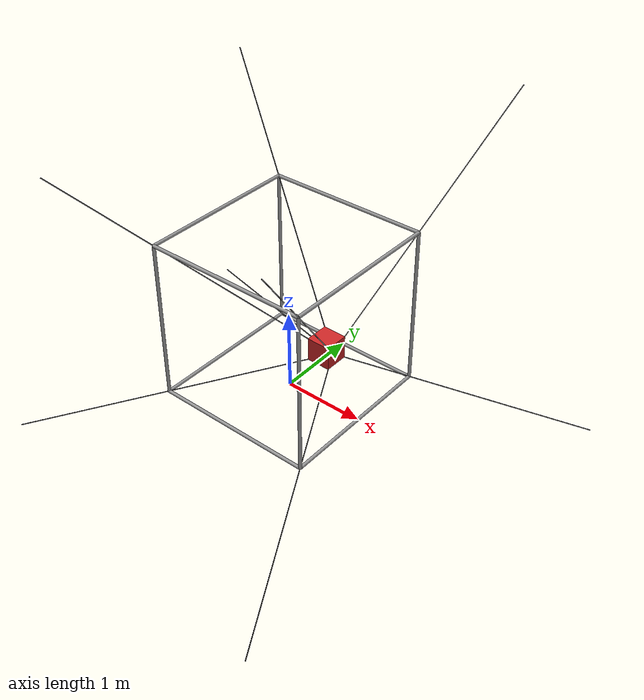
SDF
<?xml version="1.0" ?>
<sdf version="1.4">

	<model name="cube">

		<!--Definition of the robot frame-->

		<link name="frame">

			<pose>0 0 0 0 0 0</pose>

			<inertial>

				<inertia>

					<ixx>100000</ixx>

					<iyy>100000</iyy>

					<izz>100000</izz>

					<ixy>0</ixy>

					<ixz>0</ixz>

					<iyz>0</iyz>

				</inertia>

				<mass>100000</mass>

			</inertial>

			<visual name="visual1">

				<geometry>

					<cylinder>

						<radius>0.02</radius>

						<length>2.0</length>

					</cylinder>

				</geometry>

				<pose>-1.000000 -1.000000 1.000000 0.000000 0.000000 0.000000</pose>

				<material>

					<script>

						<uri>file://media/materials/scripts/kitchen.material</uri>

						<name>Gazebo/Grey</name>

					</script>

				</material>

			</visual>

			<collision name="collision1">

				<geometry>

					<cylinder>

						<radius>0.02</radius>

					</cylinder>

				</geometry>

				<pose>-1.000000 -1.000000 1.000000 0.000000 0.000000 0.000000</pose>

			</collision>

			<visual name="visual2">

				<geometry>

					<cylinder>

						<radius>0.02</radius>

						<length>2.0</length>

					</cylinder>

				</geometry>

				<pose>-1.000000 0.000000 0.000000 1.570796 0.000000 0.000000</pose>

				<material>

					<script>

						<uri>file://media/materials/scripts/kitchen.material</uri>

						<name>Gazebo/Grey</name>

					</script>

				</material>

			</visual>

			<collision name="collision2">

				<geometry>

					<cylinder>

						<radius>0.02</radius>

					</cylinder>

				</geometry>

				<pose>-1.000000 0.000000 0.000000 1.570796 0.000000 0.000000</pose>

			</collision>

			<visual name="visual3">

				<geometry>

					<cylinder>

						<radius>0.02</radius>

						<length>2.0</length>

					</cylinder>

				</geometry>

				<pose>0.000000 -1.000000 0.000000 0.000000 1.570796 0.000000</pose>

				<material>

					<script>

						<uri>file://media/materials/scripts/kitchen.material</uri>

						<name>Gazebo/Grey</name>

					</script>

				</material>

			</visual>

			<collision name="collision3">

				<geometry>

					<cylinder>

						<radius>0.02</radius>

					</cylinder>

				</geometry>

				<pose>0.000000 -1.000000 0.000000 0.000000 1.570796 0.000000</pose>

			</collision>

			<visual name="visual4">

				<geometry>

					<cylinder>

						<radius>0.02</radius>

						<length>2.0</length>

					</cylinder>

				</geometry>

				<pose>-1.000000 0.000000 2.000000 1.570796 0.000000 0.000000</pose>

				<material>

					<script>

						<uri>file://media/materials/scripts/kitchen.material</uri>

						<name>Gazebo/Grey</name>

					</script>

				</material>

			</visual>

			<collision name="collision4">

				<geometry>

					<cylinder>

						<radius>0.02</radius>

					</cylinder>

				</geometry>

				<pose>-1.000000 0.000000 2.000000 1.570796 0.000000 0.000000</pose>

			</collision>

			<visual name="visual5">

				<geometry>

					<cylinder>

						<radius>0.02</radius>

						<length>2.0</length>

					</cylinder>

				</geometry>

				<pose>0.000000 -1.000000 2.000000 0.000000 1.570796 0.000000</pose>

				<material>

					<script>

						<uri>file://media/materials/scripts/kitchen.material</uri>

						<name>Gazebo/Grey</name>

					</script>

				</material>

			</visual>

			<collision name="collision5">

				<geometry>

					<cylinder>

						<radius>0.02</radius>

					</cylinder>

				</geometry>

				<pose>0.000000 -1.000000 2.000000 0.000000 1.570796 0.000000</pose>

			</collision>

			<visual name="visual6">

				<geometry>

					<cylinder>

						<radius>0.02</radius>

						<length>2.0</length>

					</cylinder>

				</geometry>

				<pose>-1.000000 1.000000 1.000000 0.000000 0.000000 0.000000</pose>

				<material>

					<script>

						<uri>file://media/materials/scripts/kitchen.material</uri>

						<name>Gazebo/Grey</name>

					</script>

				</material>

			</visual>

			<collision name="collision6">

				<geometry>

					<cylinder>

						<radius>0.02</radius>

					</cylinder>

				</geometry>

				<pose>-1.000000 1.000000 1.000000 0.000000 0.000000 0.000000</pose>

			</collision>

			<visual name="visual7">

				<geometry>

					<cylinder>

						<radius>0.02</radius>

						<length>2.0</length>

					</cylinder>

				</geometry>

				<pose>0.000000 1.000000 0.000000 0.000000 1.570796 0.000000</pose>

				<material>

					<script>

						<uri>file://media/materials/scripts/kitchen.material</uri>

						<name>Gazebo/Grey</name>

					</script>

				</material>

			</visual>

			<collision name="collision7">

				<geometry>

					<cylinder>

						<radius>0.02</radius>

					</cylinder>

				</geometry>

				<pose>0.000000 1.000000 0.000000 0.000000 1.570796 0.000000</pose>

			</collision>

			<visual name="visual8">

				<geometry>

					<cylinder>

						<radius>0.02</radius>

						<length>2.0</length>

					</cylinder>

				</geometry>

				<pose>0.000000 1.000000 2.000000 0.000000 1.570796 0.000000</pose>

				<material>

					<script>

						<uri>file://media/materials/scripts/kitchen.material</uri>

						<name>Gazebo/Grey</name>

					</script>

				</material>

			</visual>

			<collision name="collision8">

				<geometry>

					<cylinder>

						<radius>0.02</radius>

					</cylinder>

				</geometry>

				<pose>0.000000 1.000000 2.000000 0.000000 1.570796 0.000000</pose>

			</collision>

			<visual name="visual9">

				<geometry>

					<cylinder>

						<radius>0.02</radius>

						<length>2.0</length>

					</cylinder>

				</geometry>

				<pose>1.000000 -1.000000 1.000000 0.000000 0.000000 0.000000</pose>

				<material>

					<script>

						<uri>file://media/materials/scripts/kitchen.material</uri>

						<name>Gazebo/Grey</name>

					</script>

				</material>

			</visual>

			<collision name="collision9">

				<geometry>

					<cylinder>

						<radius>0.02</radius>

					</cylinder>

				</geometry>

				<pose>1.000000 -1.000000 1.000000 0.000000 0.000000 0.000000</pose>

			</collision>

			<visual name="visual10">

				<geometry>

					<cylinder>

						<radius>0.02</radius>

						<length>2.0</length>

					</cylinder>

				</geometry>

				<pose>1.000000 0.000000 0.000000 1.570796 0.000000 0.000000</pose>

				<material>

					<script>

						<uri>file://media/materials/scripts/kitchen.material</uri>

						<name>Gazebo/Grey</name>

					</script>

				</material>

			</visual>

			<collision name="collision10">

				<geometry>

					<cylinder>

						<radius>0.02</radius>

					</cylinder>

				</geometry>

				<pose>1.000000 0.000000 0.000000 1.570796 0.000000 0.000000</pose>

			</collision>

			<visual name="visual11">

				<geometry>

					<cylinder>

						<radius>0.02</radius>

						<length>2.0</length>

					</cylinder>

				</geometry>

				<pose>1.000000 0.000000 2.000000 1.570796 0.000000 0.000000</pose>

				<material>

					<script>

						<uri>file://media/materials/scripts/kitchen.material</uri>

						<name>Gazebo/Grey</name>

					</script>

				</material>

			</visual>

			<collision name="collision11">

				<geometry>

					<cylinder>

						<radius>0.02</radius>

					</cylinder>

				</geometry>

				<pose>1.000000 0.000000 2.000000 1.570796 0.000000 0.000000</pose>

			</collision>

			<visual name="visual12">

				<geometry>

					<cylinder>

						<radius>0.02</radius>

						<length>2.0</length>

					</cylinder>

				</geometry>

				<pose>1.000000 1.000000 1.000000 0.000000 0.000000 0.000000</pose>

				<material>

					<script>

						<uri>file://media/materials/scripts/kitchen.material</uri>

						<name>Gazebo/Grey</name>

					</script>

				</material>

			</visual>

			<collision name="collision12">

				<geometry>

					<cylinder>

						<radius>0.02</radius>

					</cylinder>

				</geometry>

				<pose>1.000000 1.000000 1.000000 0.000000 0.000000 0.000000</pose>

			</collision>

		</link>

		<!--Definition of the robot cables-->

		<!--Definition of the robot platform-->

		<link name="platform">

			<pose>0.300000 0.300000 0.500000 0.000000 0.000000 0.000000</pose>

			<visual name="visualpf">

				<geometry>

					<box>

						<size>0.300000 0.300000 0.300000</size>

					</box>

				</geometry>

				<material>

					<script>

						<uri>file://media/materials/scripts/kitchen.material</uri>

						<name>Gazebo/Red</name>

					</script>

				</material>

			</visual>

			<collision name="collisionpf">

				<geometry>

					<box>

						<size>0.300000 0.300000 0.300000</size>

					</box>

				</geometry>

			</collision>

			<inertial>

				<inertia>

					<ixx>0.33</ixx>

					<iyy>0.33</iyy>

					<izz>0.33</izz>

					<ixy>0.0</ixy>

					<ixz>0.0</ixz>

					<iyz>0.0</iyz>

				</inertia>

				<mass>5</mass>

			</inertial>

		</link>

		<link name="cable0">

			<pose>-0.792380 -0.792380 1.756272 -2.436024 0.575296 -1.353793</pose>

			<visual name="visual">

				<geometry>

					<cylinder>

						<radius>0.005</radius>

						<length>3.4641016151377544</length>

					</cylinder>

				</geometry>

				<material>

					<script>

						<uri>file://media/materials/scripts/kitchen.material</uri>

						<name>Gazebo/Black</name>

					</script>

				</material>

			</visual>

			<inertial>

				<inertia>

					<ixx>0.001</ixx>

					<iyy>0.001</iyy>

					<izz>0.001</izz>

					<ixy>0</ixy>

					<ixz>0</ixz>

					<iyz>0</iyz>

				</inertia>

				<mass>0.001</mass>

			</inertial>

		</link>

		<link name="virt_X0">

			<inertial>

				<inertia>

					<ixx>0.001</ixx>

					<iyy>0.001</iyy>

					<izz>0.001</izz>

					<ixy>0</ixy>

					<ixz>0</ixz>

					<iyz>0</iyz>

				</inertia>

				<mass>0.001</mass>

			</inertial>

			<pose>-1.000000 -1.000000 2.000000 -2.436024 0.575296 -1.353793</pose>

		</link>

		<joint name="rev_X0" type="revolute">

			<pose>0 0 0 -2.436024 0.575296 -1.353793</pose>

			<parent>frame</parent>

			<child>virt_X0</child>

			<axis>

				<xyz>0.180647 -0.819353 -0.544084</xyz>

				<limit>

					<effort>10000</effort>

					<velocity>10</velocity>

				</limit>

				<dynamics>

					<damping>0.1</damping>

				</dynamics>

			</axis>

		</joint>

		<link name="virt_Y0">

			<inertial>

				<inertia>

					<ixx>0.001</ixx>

					<iyy>0.001</iyy>

					<izz>0.001</izz>

					<ixy>0</ixy>

					<ixz>0</ixz>

					<iyz>0</iyz>

				</inertia>

				<mass>0.001</mass>

			</inertial>

			<pose>-1.000000 -1.000000 2.000000 -2.436024 0.575296 -1.353793</pose>

		</link>

		<joint name="rev_Y0" type="revolute">

			<pose>0 0 0 -2.436024 0.575296 -1.353793</pose>

			<parent>virt_X0</parent>

			<child>virt_Y0</child>

			<axis>

				<xyz>-0.819353 0.180647 -0.544084</xyz>

				<limit>

					<effort>10000</effort>

					<velocity>10</velocity>

				</limit>

				<dynamics>

					<damping>0.1</damping>

				</dynamics>

			</axis>

		</joint>

		<joint name="cable0" type="prismatic">
			<pose>0 0 -0.312703 -2.436024 0.575296 -1.353793</pose>
			<parent>virt_Y0</parent>
			<child>cable0</child>
			<axis>
				<xyz>-0.544084 -0.544084 0.638707</xyz>
				<limit>
					<lower>-1.7320508075688772</lower>
					<upper>1.7320508075688772</upper>
					<effort>10000</effort>
					<velocity>10</velocity>
				</limit>
				<dynamics>
					<damping>10</damping>
				</dynamics>
			</axis>
		</joint>
		<transmission name="lift_transmission">
    		<type>transmission_interface/SimpleTransmission</type>
    		<joint name="cable0">
      			<hardwareInterface>PositionJointInterface</hardwareInterface>
    		</joint>
    		<actuator name="lift_motor_0">
      			<hardwareInterface>PositionJointInterface</hardwareInterface>
      			<mechanicalReduction>1</mechanicalReduction>
    		</actuator>
  		</transmission>
		<link name="virt_Xpf0">

			<inertial>

				<inertia>

					<ixx>0.001</ixx>

					<iyy>0.001</iyy>

					<izz>0.001</izz>

					<ixy>0</ixy>

					<ixz>0</ixz>

					<iyz>0</iyz>

				</inertia>

				<mass>0.001</mass>

			</inertial>

			<pose>0.150000 0.150000 0.650000 -2.436024 0.575296 -1.353793</pose>

		</link>

		<joint name="rev_Xpf0" type="revolute">

			<pose>0 0 0 -2.436024 0.575296 -1.353793</pose>

			<parent>platform</parent>

			<child>virt_Xpf0</child>

			<axis>

				<xyz>1 0 0</xyz>

				<limit>

					<effort>10000</effort>

					<velocity>10</velocity>

				</limit>

				<dynamics>

					<damping>0.1</damping>

				</dynamics>

			</axis>

		</joint>

		<link name="virt_Ypf0">

			<inertial>

				<inertia>

					<ixx>0.001</ixx>

					<iyy>0.001</iyy>

					<izz>0.001</izz>

					<ixy>0</ixy>

					<ixz>0</ixz>

					<iyz>0</iyz>

				</inertia>

				<mass>0.001</mass>

			</inertial>

			<pose>0.150000 0.150000 0.650000 -2.436024 0.575296 -1.353793</pose>

		</link>

		<joint name="rev_Ypf0" type="revolute">

			<pose>0 0 0 -2.436024 0.575296 -1.353793</pose>

			<parent>virt_Xpf0</parent>

			<child>virt_Ypf0</child>

			<axis>

				<xyz>0 1 0</xyz>

				<limit>

					<effort>10000</effort>

					<velocity>10</velocity>

				</limit>

				<dynamics>

					<damping>0.1</damping>

				</dynamics>

			</axis>

		</joint>

		<joint name="rev_Zpf0" type="revolute">

			<pose>0 0 0 -2.436024 0.575296 -1.353793</pose>

			<child>virt_Ypf0</child>

			<parent>cable0</parent>

			<axis>

				<xyz>0 0 1</xyz>

				<limit>

					<effort>10000</effort>

					<velocity>10</velocity>

				</limit>

				<dynamics>

					<damping>0.1</damping>

				</dynamics>

			</axis>

		</joint>

		<link name="cable1">
			<pose>-0.922769 0.963064 1.909338 2.754717 0.667932 2.113659</pose>
			<visual name="visual">
				<geometry>
					<cylinder>
						<radius>0.005</radius>
						<length>3.4641016151377544</length>
					</cylinder>
				</geometry>
				<material>
					<script>
						<uri>file://media/materials/scripts/kitchen.material</uri>
						<name>Gazebo/Black</name>

					</script>

				</material>

			</visual>

			<inertial>

				<inertia>

					<ixx>0.001</ixx>

					<iyy>0.001</iyy>

					<izz>0.001</izz>

					<ixy>0</ixy>

					<ixz>0</ixz>

					<iyz>0</iyz>

				</inertia>

				<mass>0.001</mass>

			</inertial>

		</link>

		<link name="virt_X1">

			<inertial>

				<inertia>

					<ixx>0.001</ixx>

					<iyy>0.001</iyy>

					<izz>0.001</izz>

					<ixy>0</ixy>

					<ixz>0</ixz>

					<iyz>0</iyz>

				</inertia>

				<mass>0.001</mass>

			</inertial>

			<pose>-1.000000 1.000000 2.000000 2.754717 0.667932 2.113659</pose>

		</link>

		<joint name="rev_X1" type="revolute">

			<pose>0 0 0 2.754717 0.667932 2.113659</pose>

			<parent>frame</parent>

			<child>virt_X1</child>

			<axis>

				<xyz>-0.405577 0.672232 -0.619364</xyz>

				<limit>

					<effort>10000</effort>

					<velocity>10</velocity>

				</limit>

				<dynamics>

					<damping>0.1</damping>

				</dynamics>

			</axis>

		</joint>

		<link name="virt_Y1">

			<inertial>

				<inertia>

					<ixx>0.001</ixx>

					<iyy>0.001</iyy>

					<izz>0.001</izz>

					<ixy>0</ixy>

					<ixz>0</ixz>

					<iyz>0</iyz>

				</inertia>

				<mass>0.001</mass>

			</inertial>

			<pose>-1.000000 1.000000 2.000000 2.754717 0.667932 2.113659</pose>

		</link>

		<joint name="rev_Y1" type="revolute">

			<pose>0 0 0 2.754717 0.667932 2.113659</pose>

			<parent>virt_X1</parent>

			<child>virt_Y1</child>

			<axis>

				<xyz>0.672232 0.678498 0.296217</xyz>

				<limit>

					<effort>10000</effort>

					<velocity>10</velocity>

				</limit>

				<dynamics>

					<damping>0.1</damping>

				</dynamics>

			</axis>

		</joint>

		<joint name="cable1" type="prismatic">
			<pose>0 0 -0.116320 2.754717 0.667932 2.113659</pose>
			<parent>virt_Y1</parent>
			<child>cable1</child>
			<axis>
				<xyz>-0.619364 0.296217 0.727079</xyz>
				<limit>
					<lower>-1.7320508075688772</lower>
					<upper>1.7320508075688772</upper>
					<effort>10000</effort>
					<velocity>10</velocity>
				</limit>
				<dynamics>
					<damping>10</damping>
				</dynamics>
			</axis>
		</joint>
		<transmission name="lift_transmission_1">
    		<type>transmission_interface/SimpleTransmission</type>
    		<joint name="cable1">
      			<hardwareInterface>PositionJointInterface</hardwareInterface>
    		</joint>
    		<actuator name="lift_motor_1">
      			<hardwareInterface>PositionJointInterface</hardwareInterface>
      			<mechanicalReduction>1</mechanicalReduction>
    		</actuator>
  		</transmission>

		<link name="virt_Xpf1">

			<inertial>

				<inertia>

					<ixx>0.001</ixx>

					<iyy>0.001</iyy>

					<izz>0.001</izz>

					<ixy>0</ixy>

					<ixz>0</ixz>

					<iyz>0</iyz>

				</inertia>

				<mass>0.001</mass>

			</inertial>

			<pose>0.150000 0.450000 0.650000 2.754717 0.667932 2.113659</pose>

		</link>

		<joint name="rev_Xpf1" type="revolute">

			<pose>0 0 0 2.754717 0.667932 2.113659</pose>

			<parent>platform</parent>

			<child>virt_Xpf1</child>

			<axis>

				<xyz>1 0 0</xyz>

				<limit>

					<effort>10000</effort>

					<velocity>10</velocity>

				</limit>

				<dynamics>

					<damping>0.1</damping>

				</dynamics>

			</axis>

		</joint>

		<link name="virt_Ypf1">

			<inertial>

				<inertia>

					<ixx>0.001</ixx>

					<iyy>0.001</iyy>

					<izz>0.001</izz>

					<ixy>0</ixy>

					<ixz>0</ixz>

					<iyz>0</iyz>

				</inertia>

				<mass>0.001</mass>

			</inertial>

			<pose>0.150000 0.450000 0.650000 2.754717 0.667932 2.113659</pose>

		</link>

		<joint name="rev_Ypf1" type="revolute">

			<pose>0 0 0 2.754717 0.667932 2.113659</pose>

			<parent>virt_Xpf1</parent>

			<child>virt_Ypf1</child>

			<axis>

				<xyz>0 1 0</xyz>

				<limit>

					<effort>10000</effort>

					<velocity>10</velocity>

				</limit>

				<dynamics>

					<damping>0.1</damping>

				</dynamics>

			</axis>

		</joint>

		<joint name="rev_Zpf1" type="revolute">

			<pose>0 0 0 2.754717 0.667932 2.113659</pose>

			<child>virt_Ypf1</child>

			<parent>cable1</parent>

			<axis>

				<xyz>0 0 1</xyz>

				<limit>

					<effort>10000</effort>

					<velocity>10</velocity>

				</limit>

				<dynamics>

					<damping>0.1</damping>

				</dynamics>

			</axis>

		</joint>

		<link name="cable2">

			<pose>1.061426 1.061426 2.150772 2.754717 -0.360783 -1.499377</pose>

			<visual name="visual">

				<geometry>

					<cylinder>

						<radius>0.005</radius>

						<length>3.4641016151377544</length>

					</cylinder>

				</geometry>

				<material>

					<script>

						<uri>file://media/materials/scripts/kitchen.material</uri>

						<name>Gazebo/Black</name>

					</script>

				</material>

			</visual>

			<inertial>

				<inertia>

					<ixx>0.001</ixx>

					<iyy>0.001</iyy>

					<izz>0.001</izz>

					<ixy>0</ixy>

					<ixz>0</ixz>

					<iyz>0</iyz>

				</inertia>

				<mass>0.001</mass>

			</inertial>

		</link>

		<link name="virt_X2">

			<inertial>

				<inertia>

					<ixx>0.001</ixx>

					<iyy>0.001</iyy>

					<izz>0.001</izz>

					<ixy>0</ixy>

					<ixz>0</ixz>

					<iyz>0</iyz>

				</inertia>

				<mass>0.001</mass>

			</inertial>

			<pose>1.000000 1.000000 2.000000 2.754717 -0.360783 -1.499377</pose>

		</link>

		<joint name="rev_X2" type="revolute">

			<pose>0 0 0 2.754717 -0.360783 -1.499377</pose>

			<parent>frame</parent>

			<child>virt_X2</child>

			<axis>

				<xyz>0.066764 -0.933236 0.353007</xyz>

				<limit>

					<effort>10000</effort>

					<velocity>10</velocity>

				</limit>

				<dynamics>

					<damping>0.1</damping>

				</dynamics>

			</axis>

		</joint>

		<link name="virt_Y2">

			<inertial>

				<inertia>

					<ixx>0.001</ixx>

					<iyy>0.001</iyy>

					<izz>0.001</izz>

					<ixy>0</ixy>

					<ixz>0</ixz>

					<iyz>0</iyz>

				</inertia>

				<mass>0.001</mass>

			</inertial>

			<pose>1.000000 1.000000 2.000000 2.754717 -0.360783 -1.499377</pose>

		</link>

		<joint name="rev_Y2" type="revolute">

			<pose>0 0 0 2.754717 -0.360783 -1.499377</pose>

			<parent>virt_X2</parent>

			<child>virt_Y2</child>

			<axis>

				<xyz>-0.933236 0.066764 0.353007</xyz>

				<limit>

					<effort>10000</effort>

					<velocity>10</velocity>

				</limit>

				<dynamics>

					<damping>0.1</damping>

				</dynamics>

			</axis>

		</joint>

		<joint name="cable2" type="prismatic">

			<pose>0 0 0.193441 2.754717 -0.360783 -1.499377</pose>

			<parent>virt_Y2</parent>

			<child>cable2</child>

			<axis>

				<xyz>0.353007 0.353007 0.866471</xyz>

				<limit>

					<lower>-1.7320508075688772</lower>

					<upper>1.7320508075688772</upper>

					<effort>10000</effort>

					<velocity>10</velocity>

				</limit>

				<dynamics>
					<damping>10</damping>
				</dynamics>
			</axis>
		</joint>
		<transmission name="lift_transmission_2">
    		<type>transmission_interface/SimpleTransmission</type>
    		<joint name="cable2">
      			<hardwareInterface>PositionJointInterface</hardwareInterface>
    		</joint>
    		<actuator name="lift_motor_2">
      			<hardwareInterface>PositionJointInterface</hardwareInterface>
      			<mechanicalReduction>1</mechanicalReduction>
    		</actuator>
  		</transmission>
		<link name="virt_Xpf2">

			<inertial>

				<inertia>

					<ixx>0.001</ixx>

					<iyy>0.001</iyy>

					<izz>0.001</izz>

					<ixy>0</ixy>

					<ixz>0</ixz>

					<iyz>0</iyz>

				</inertia>

				<mass>0.001</mass>

			</inertial>

			<pose>0.450000 0.450000 0.650000 2.754717 -0.360783 -1.499377</pose>

		</link>

		<joint name="rev_Xpf2" type="revolute">

			<pose>0 0 0 2.754717 -0.360783 -1.499377</pose>

			<parent>platform</parent>

			<child>virt_Xpf2</child>

			<axis>

				<xyz>1 0 0</xyz>

				<limit>

					<effort>10000</effort>

					<velocity>10</velocity>

				</limit>

				<dynamics>

					<damping>0.1</damping>

				</dynamics>

			</axis>

		</joint>

		<link name="virt_Ypf2">

			<inertial>

				<inertia>

					<ixx>0.001</ixx>

					<iyy>0.001</iyy>

					<izz>0.001</izz>

					<ixy>0</ixy>

					<ixz>0</ixz>

					<iyz>0</iyz>

				</inertia>

				<mass>0.001</mass>

			</inertial>

			<pose>0.450000 0.450000 0.650000 2.754717 -0.360783 -1.499377</pose>

		</link>

		<joint name="rev_Ypf2" type="revolute">

			<pose>0 0 0 2.754717 -0.360783 -1.499377</pose>

			<parent>virt_Xpf2</parent>

			<child>virt_Ypf2</child>

			<axis>

				<xyz>0 1 0</xyz>

				<limit>

					<effort>10000</effort>

					<velocity>10</velocity>

				</limit>

				<dynamics>

					<damping>0.1</damping>

				</dynamics>

			</axis>

		</joint>

		<joint name="rev_Zpf2" type="revolute">

			<pose>0 0 0 2.754717 -0.360783 -1.499377</pose>

			<child>virt_Ypf2</child>

			<parent>cable2</parent>

			<axis>

				<xyz>0 0 1</xyz>

				<limit>

					<effort>10000</effort>

					<velocity>10</velocity>

				</limit>

				<dynamics>

					<damping>0.1</damping>

				</dynamics>

			</axis>

		</joint>

		<link name="cable3">

			<pose>0.963064 -0.922769 1.909338 -2.436024 -0.300730 0.780760</pose>

			<visual name="visual">

				<geometry>

					<cylinder>

						<radius>0.005</radius>

						<length>3.4641016151377544</length>

					</cylinder>

				</geometry>

				<material>

					<script>

						<uri>file://media/materials/scripts/kitchen.material</uri>

						<name>Gazebo/Black</name>

					</script>

				</material>

			</visual>

			<inertial>

				<inertia>

					<ixx>0.001</ixx>

					<iyy>0.001</iyy>

					<izz>0.001</izz>

					<ixy>0</ixy>

					<ixz>0</ixz>

					<iyz>0</iyz>

				</inertia>

				<mass>0.001</mass>

			</inertial>

		</link>

		<link name="virt_X3">

			<inertial>

				<inertia>

					<ixx>0.001</ixx>

					<iyy>0.001</iyy>

					<izz>0.001</izz>

					<ixy>0</ixy>

					<ixz>0</ixz>

					<iyz>0</iyz>

				</inertia>

				<mass>0.001</mass>

			</inertial>

			<pose>1.000000 -1.000000 2.000000 -2.436024 -0.300730 0.780760</pose>

		</link>

		<joint name="rev_X3" type="revolute">

			<pose>0 0 0 -2.436024 -0.300730 0.780760</pose>

			<parent>frame</parent>

			<child>virt_X3</child>

			<axis>

				<xyz>0.678498 0.672232 0.296217</xyz>

				<limit>

					<effort>10000</effort>

					<velocity>10</velocity>

				</limit>

				<dynamics>

					<damping>0.1</damping>

				</dynamics>

			</axis>

		</joint>

		<link name="virt_Y3">

			<inertial>

				<inertia>

					<ixx>0.001</ixx>

					<iyy>0.001</iyy>

					<izz>0.001</izz>

					<ixy>0</ixy>

					<ixz>0</ixz>

					<iyz>0</iyz>

				</inertia>

				<mass>0.001</mass>

			</inertial>

			<pose>1.000000 -1.000000 2.000000 -2.436024 -0.300730 0.780760</pose>

		</link>

		<joint name="rev_Y3" type="revolute">

			<pose>0 0 0 -2.436024 -0.300730 0.780760</pose>

			<parent>virt_X3</parent>

			<child>virt_Y3</child>

			<axis>

				<xyz>0.672232 -0.405577 -0.619364</xyz>

				<limit>

					<effort>10000</effort>

					<velocity>10</velocity>

				</limit>

				<dynamics>

					<damping>0.1</damping>

				</dynamics>

			</axis>

		</joint>

		<joint name="cable3" type="prismatic">

			<pose>0 0 -0.116320 -2.436024 -0.300730 0.780760</pose>

			<parent>virt_Y3</parent>

			<child>cable3</child>

			<axis>

				<xyz>0.296217 -0.619364 0.727079</xyz>

				<limit>

					<lower>-1.7320508075688772</lower>

					<upper>1.7320508075688772</upper>

					<effort>10000</effort>

					<velocity>10</velocity>

				</limit>

				<dynamics>

					<damping>10</damping>

				</dynamics>

			</axis>

		</joint>
		<transmission name="lift_transmission_3">
    		<type>transmission_interface/SimpleTransmission</type>
    		<joint name="cable3">
      			<hardwareInterface>PositionJointInterface</hardwareInterface>
    		</joint>
    		<actuator name="lift_motor_3">
      			<hardwareInterface>PositionJointInterface</hardwareInterface>
      			<mechanicalReduction>1</mechanicalReduction>
    		</actuator>
  		</transmission>

		<link name="virt_Xpf3">

			<inertial>

				<inertia>

					<ixx>0.001</ixx>

					<iyy>0.001</iyy>

					<izz>0.001</izz>

					<ixy>0</ixy>

					<ixz>0</ixz>

					<iyz>0</iyz>

				</inertia>

				<mass>0.001</mass>

			</inertial>

			<pose>0.450000 0.150000 0.650000 -2.436024 -0.300730 0.780760</pose>

		</link>

		<joint name="rev_Xpf3" type="revolute">

			<pose>0 0 0 -2.436024 -0.300730 0.780760</pose>

			<parent>platform</parent>

			<child>virt_Xpf3</child>

			<axis>

				<xyz>1 0 0</xyz>

				<limit>

					<effort>10000</effort>

					<velocity>10</velocity>

				</limit>

				<dynamics>

					<damping>0.1</damping>

				</dynamics>

			</axis>

		</joint>

		<link name="virt_Ypf3">

			<inertial>

				<inertia>

					<ixx>0.001</ixx>

					<iyy>0.001</iyy>

					<izz>0.001</izz>

					<ixy>0</ixy>

					<ixz>0</ixz>

					<iyz>0</iyz>

				</inertia>

				<mass>0.001</mass>

			</inertial>

			<pose>0.450000 0.150000 0.650000 -2.436024 -0.300730 0.780760</pose>

		</link>

		<joint name="rev_Ypf3" type="revolute">

			<pose>0 0 0 -2.436024 -0.300730 0.780760</pose>

			<parent>virt_Xpf3</parent>

			<child>virt_Ypf3</child>

			<axis>

				<xyz>0 1 0</xyz>

				<limit>

					<effort>10000</effort>

					<velocity>10</velocity>

				</limit>

				<dynamics>

					<damping>0.1</damping>

				</dynamics>

			</axis>

		</joint>

		<joint name="rev_Zpf3" type="revolute">

			<pose>0 0 0 -2.436024 -0.300730 0.780760</pose>

			<child>virt_Ypf3</child>

			<parent>cable3</parent>

			<axis>

				<xyz>0 0 1</xyz>

				<limit>

					<effort>10000</effort>

					<velocity>10</velocity>

				</limit>

				<dynamics>

					<damping>0.1</damping>

				</dynamics>

			</axis>

		</joint>

		<link name="cable4">

			<pose>-1.047332 -1.047332 -0.014405 -1.275355 0.763259 -0.578033</pose>

			<visual name="visual">

				<geometry>

					<cylinder>

						<radius>0.005</radius>

						<length>3.4641016151377544</length>

					</cylinder>

				</geometry>

				<material>

					<script>

						<uri>file://media/materials/scripts/kitchen.material</uri>

						<name>Gazebo/Black</name>

					</script>

				</material>

			</visual>

			<inertial>

				<inertia>

					<ixx>0.001</ixx>

					<iyy>0.001</iyy>

					<izz>0.001</izz>

					<ixy>0</ixy>

					<ixz>0</ixz>

					<iyz>0</iyz>

				</inertia>

				<mass>0.001</mass>

			</inertial>

		</link>

		<link name="virt_X4">

			<inertial>

				<inertia>

					<ixx>0.001</ixx>

					<iyy>0.001</iyy>

					<izz>0.001</izz>

					<ixy>0</ixy>

					<ixz>0</ixz>

					<iyz>0</iyz>

				</inertia>

				<mass>0.001</mass>

			</inertial>

			<pose>-1.000000 -1.000000 0.000000 -1.275355 0.763259 -0.578033</pose>

		</link>

		<joint name="rev_X4" type="revolute">

			<pose>0 0 0 -1.275355 0.763259 -0.578033</pose>

			<parent>frame</parent>

			<child>virt_X4</child>

			<axis>

				<xyz>0.605195 -0.394805 -0.691280</xyz>

				<limit>

					<effort>10000</effort>

					<velocity>10</velocity>

				</limit>

				<dynamics>

					<damping>0.1</damping>

				</dynamics>

			</axis>

		</joint>

		<link name="virt_Y4">

			<inertial>

				<inertia>

					<ixx>0.001</ixx>

					<iyy>0.001</iyy>

					<izz>0.001</izz>

					<ixy>0</ixy>

					<ixz>0</ixz>

					<iyz>0</iyz>

				</inertia>

				<mass>0.001</mass>

			</inertial>

			<pose>-1.000000 -1.000000 0.000000 -1.275355 0.763259 -0.578033</pose>

		</link>

		<joint name="rev_Y4" type="revolute">

			<pose>0 0 0 -1.275355 0.763259 -0.578033</pose>

			<parent>virt_X4</parent>

			<child>virt_Y4</child>

			<axis>

				<xyz>-0.394805 0.605195 -0.691280</xyz>

				<limit>

					<effort>10000</effort>

					<velocity>10</velocity>

				</limit>

				<dynamics>

					<damping>0.1</damping>

				</dynamics>

			</axis>

		</joint>

		<joint name="cable4" type="prismatic">

			<pose>0 0 0.071288 -1.275355 0.763259 -0.578033</pose>

			<parent>virt_Y4</parent>

			<child>cable4</child>

			<axis>

				<xyz>-0.691280 -0.691280 -0.210390</xyz>

				<limit>

					<lower>-1.7320508075688772</lower>

					<upper>1.7320508075688772</upper>

					<effort>10000</effort>

					<velocity>10</velocity>

				</limit>

				<dynamics>

					<damping>10</damping>

				</dynamics>

			</axis>

		</joint>
		<transmission name="lift_transmission_4">
    		<type>transmission_interface/SimpleTransmission</type>
    		<joint name="cable4">
      			<hardwareInterface>PositionJointInterface</hardwareInterface>
    		</joint>
    		<actuator name="lift_motor_4">
      			<hardwareInterface>PositionJointInterface</hardwareInterface>
      			<mechanicalReduction>1</mechanicalReduction>
    		</actuator>
  		</transmission>

		<link name="virt_Xpf4">

			<inertial>

				<inertia>

					<ixx>0.001</ixx>

					<iyy>0.001</iyy>

					<izz>0.001</izz>

					<ixy>0</ixy>

					<ixz>0</ixz>

					<iyz>0</iyz>

				</inertia>

				<mass>0.001</mass>

			</inertial>

			<pose>0.150000 0.150000 0.350000 -1.275355 0.763259 -0.578033</pose>

		</link>

		<joint name="rev_Xpf4" type="revolute">

			<pose>0 0 0 -1.275355 0.763259 -0.578033</pose>

			<parent>platform</parent>

			<child>virt_Xpf4</child>

			<axis>

				<xyz>1 0 0</xyz>

				<limit>

					<effort>10000</effort>

					<velocity>10</velocity>

				</limit>

				<dynamics>

					<damping>0.1</damping>

				</dynamics>

			</axis>

		</joint>

		<link name="virt_Ypf4">

			<inertial>

				<inertia>

					<ixx>0.001</ixx>

					<iyy>0.001</iyy>

					<izz>0.001</izz>

					<ixy>0</ixy>

					<ixz>0</ixz>

					<iyz>0</iyz>

				</inertia>

				<mass>0.001</mass>

			</inertial>

			<pose>0.150000 0.150000 0.350000 -1.275355 0.763259 -0.578033</pose>

		</link>

		<joint name="rev_Ypf4" type="revolute">

			<pose>0 0 0 -1.275355 0.763259 -0.578033</pose>

			<parent>virt_Xpf4</parent>

			<child>virt_Ypf4</child>

			<axis>

				<xyz>0 1 0</xyz>

				<limit>

					<effort>10000</effort>

					<velocity>10</velocity>

				</limit>

				<dynamics>

					<damping>0.1</damping>

				</dynamics>

			</axis>

		</joint>

		<joint name="rev_Zpf4" type="revolute">

			<pose>0 0 0 -1.275355 0.763259 -0.578033</pose>

			<child>virt_Ypf4</child>

			<parent>cable4</parent>

			<axis>

				<xyz>0 0 1</xyz>

				<limit>

					<effort>10000</effort>

					<velocity>10</velocity>

				</limit>

				<dynamics>

					<damping>0.1</damping>

				</dynamics>

			</axis>

		</joint>

		<link name="cable5">

			<pose>-1.356780 1.170634 -0.108585 1.004067 1.055080 0.619089</pose>

			<visual name="visual">

				<geometry>

					<cylinder>

						<radius>0.005</radius>

						<length>3.4641016151377544</length>

					</cylinder>

				</geometry>

				<material>

					<script>

						<uri>file://media/materials/scripts/kitchen.material</uri>

						<name>Gazebo/Black</name>

					</script>

				</material>

			</visual>

			<inertial>

				<inertia>

					<ixx>0.001</ixx>

					<iyy>0.001</iyy>

					<izz>0.001</izz>

					<ixy>0</ixy>

					<ixz>0</ixz>

					<iyz>0</iyz>

				</inertia>

				<mass>0.001</mass>

			</inertial>

		</link>

		<link name="virt_X5">

			<inertial>

				<inertia>

					<ixx>0.001</ixx>

					<iyy>0.001</iyy>

					<izz>0.001</izz>

					<ixy>0</ixy>

					<ixz>0</ixz>

					<iyz>0</iyz>

				</inertia>

				<mass>0.001</mass>

			</inertial>

			<pose>-1.000000 1.000000 0.000000 1.004067 1.055080 0.619089</pose>

		</link>

		<joint name="rev_X5" type="revolute">

			<pose>0 0 0 1.004067 1.055080 0.619089</pose>

			<parent>frame</parent>

			<child>virt_X5</child>

			<axis>

				<xyz>0.401631 0.286176 -0.869940</xyz>

				<limit>

					<effort>10000</effort>

					<velocity>10</velocity>

				</limit>

				<dynamics>

					<damping>0.1</damping>

				</dynamics>

			</axis>

		</joint>

		<link name="virt_Y5">

			<inertial>

				<inertia>

					<ixx>0.001</ixx>

					<iyy>0.001</iyy>

					<izz>0.001</izz>

					<ixy>0</ixy>

					<ixz>0</ixz>

					<iyz>0</iyz>

				</inertia>

				<mass>0.001</mass>

			</inertial>

			<pose>-1.000000 1.000000 0.000000 1.004067 1.055080 0.619089</pose>

		</link>

		<joint name="rev_Y5" type="revolute">

			<pose>0 0 0 1.004067 1.055080 0.619089</pose>

			<parent>virt_X5</parent>

			<child>virt_Y5</child>

			<axis>

				<xyz>0.286176 0.863133 0.416058</xyz>

				<limit>

					<effort>10000</effort>

					<velocity>10</velocity>

				</limit>

				<dynamics>

					<damping>0.1</damping>

				</dynamics>

			</axis>

		</joint>

		<joint name="cable5" type="prismatic">

			<pose>0 0 0.537358 1.004067 1.055080 0.619089</pose>

			<parent>virt_Y5</parent>

			<child>cable5</child>

			<axis>

				<xyz>-0.869940 0.416058 -0.264764</xyz>

				<limit>

					<lower>-1.7320508075688772</lower>

					<upper>1.7320508075688772</upper>

					<effort>10000</effort>

					<velocity>10</velocity>

				</limit>

				<dynamics>

					<damping>10</damping>

				</dynamics>

			</axis>

		</joint>
		<transmission name="lift_transmission_5">
    		<type>transmission_interface/SimpleTransmission</type>
    		<joint name="cable5">
      			<hardwareInterface>PositionJointInterface</hardwareInterface>
    		</joint>
    		<actuator name="lift_motor_5">
      			<hardwareInterface>PositionJointInterface</hardwareInterface>
      			<mechanicalReduction>1</mechanicalReduction>
    		</actuator>
  		</transmission>

		<link name="virt_Xpf5">

			<inertial>

				<inertia>

					<ixx>0.001</ixx>

					<iyy>0.001</iyy>

					<izz>0.001</izz>

					<ixy>0</ixy>

					<ixz>0</ixz>

					<iyz>0</iyz>

				</inertia>

				<mass>0.001</mass>

			</inertial>

			<pose>0.150000 0.450000 0.350000 1.004067 1.055080 0.619089</pose>

		</link>

		<joint name="rev_Xpf5" type="revolute">

			<pose>0 0 0 1.004067 1.055080 0.619089</pose>

			<parent>platform</parent>

			<child>virt_Xpf5</child>

			<axis>

				<xyz>1 0 0</xyz>

				<limit>

					<effort>10000</effort>

					<velocity>10</velocity>

				</limit>

				<dynamics>

					<damping>0.1</damping>

				</dynamics>

			</axis>

		</joint>

		<link name="virt_Ypf5">

			<inertial>

				<inertia>

					<ixx>0.001</ixx>

					<iyy>0.001</iyy>

					<izz>0.001</izz>

					<ixy>0</ixy>

					<ixz>0</ixz>

					<iyz>0</iyz>

				</inertia>

				<mass>0.001</mass>

			</inertial>

			<pose>0.150000 0.450000 0.350000 1.004067 1.055080 0.619089</pose>

		</link>

		<joint name="rev_Ypf5" type="revolute">

			<pose>0 0 0 1.004067 1.055080 0.619089</pose>

			<parent>virt_Xpf5</parent>

			<child>virt_Ypf5</child>

			<axis>

				<xyz>0 1 0</xyz>

				<limit>

					<effort>10000</effort>

					<velocity>10</velocity>

				</limit>

				<dynamics>

					<damping>0.1</damping>

				</dynamics>

			</axis>

		</joint>

		<joint name="rev_Zpf5" type="revolute">

			<pose>0 0 0 1.004067 1.055080 0.619089</pose>

			<child>virt_Ypf5</child>

			<parent>cable5</parent>

			<axis>

				<xyz>0 0 1</xyz>

				<limit>

					<effort>10000</effort>

					<velocity>10</velocity>

				</limit>

				<dynamics>

					<damping>0.1</damping>

				</dynamics>

			</axis>

		</joint>

		<link name="cable6">

			<pose>1.566881 1.566881 -0.360742 1.004067 -0.700803 -0.396004</pose>

			<visual name="visual">

				<geometry>

					<cylinder>

						<radius>0.005</radius>

						<length>3.4641016151377544</length>

					</cylinder>

				</geometry>

				<material>

					<script>

						<uri>file://media/materials/scripts/kitchen.material</uri>

						<name>Gazebo/Black</name>

					</script>

				</material>

			</visual>

			<inertial>

				<inertia>

					<ixx>0.001</ixx>

					<iyy>0.001</iyy>

					<izz>0.001</izz>

					<ixy>0</ixy>

					<ixz>0</ixz>

					<iyz>0</iyz>

				</inertia>

				<mass>0.001</mass>

			</inertial>

		</link>

		<link name="virt_X6">

			<inertial>

				<inertia>

					<ixx>0.001</ixx>

					<iyy>0.001</iyy>

					<izz>0.001</izz>

					<ixy>0</ixy>

					<ixz>0</ixz>

					<iyz>0</iyz>

				</inertia>

				<mass>0.001</mass>

			</inertial>

			<pose>1.000000 1.000000 0.000000 1.004067 -0.700803 -0.396004</pose>

		</link>

		<joint name="rev_X6" type="revolute">

			<pose>0 0 0 1.004067 -0.700803 -0.396004</pose>

			<parent>frame</parent>

			<child>virt_X6</child>

			<axis>

				<xyz>0.705174 -0.294826 0.644831</xyz>

				<limit>

					<effort>10000</effort>

					<velocity>10</velocity>

				</limit>

				<dynamics>

					<damping>0.1</damping>

				</dynamics>

			</axis>

		</joint>

		<link name="virt_Y6">

			<inertial>

				<inertia>

					<ixx>0.001</ixx>

					<iyy>0.001</iyy>

					<izz>0.001</izz>

					<ixy>0</ixy>

					<ixz>0</ixz>

					<iyz>0</iyz>

				</inertia>

				<mass>0.001</mass>

			</inertial>

			<pose>1.000000 1.000000 0.000000 1.004067 -0.700803 -0.396004</pose>

		</link>

		<joint name="rev_Y6" type="revolute">

			<pose>0 0 0 1.004067 -0.700803 -0.396004</pose>

			<parent>virt_X6</parent>

			<child>virt_Y6</child>

			<axis>

				<xyz>-0.294826 0.705174 0.644831</xyz>

				<limit>

					<effort>10000</effort>

					<velocity>10</velocity>

				</limit>

				<dynamics>

					<damping>0.1</damping>

				</dynamics>

			</axis>

		</joint>

		<joint name="cable6" type="prismatic">

			<pose>0 0 1.785211 1.004067 -0.700803 -0.396004</pose>

			<parent>virt_Y6</parent>

			<child>cable6</child>

			<axis>

				<xyz>0.644831 0.644831 -0.410347</xyz>

				<limit>

					<lower>-1.7320508075688772</lower>

					<upper>1.7320508075688772</upper>

					<effort>10000</effort>

					<velocity>10</velocity>

				</limit>

				<dynamics>

					<damping>10</damping>

				</dynamics>

			</axis>

		</joint>
		<transmission name="lift_transmission_6">
    		<type>transmission_interface/SimpleTransmission</type>
    		<joint name="cable6">
      			<hardwareInterface>PositionJointInterface</hardwareInterface>
    		</joint>
    		<actuator name="lift_motor_6">
      			<hardwareInterface>PositionJointInterface</hardwareInterface>
      			<mechanicalReduction>1</mechanicalReduction>
    		</actuator>
  		</transmission>

		<link name="virt_Xpf6">

			<inertial>

				<inertia>

					<ixx>0.001</ixx>

					<iyy>0.001</iyy>

					<izz>0.001</izz>

					<ixy>0</ixy>

					<ixz>0</ixz>

					<iyz>0</iyz>

				</inertia>

				<mass>0.001</mass>

			</inertial>

			<pose>0.450000 0.450000 0.350000 1.004067 -0.700803 -0.396004</pose>

		</link>

		<joint name="rev_Xpf6" type="revolute">

			<pose>0 0 0 1.004067 -0.700803 -0.396004</pose>

			<parent>platform</parent>

			<child>virt_Xpf6</child>

			<axis>

				<xyz>1 0 0</xyz>

				<limit>

					<effort>10000</effort>

					<velocity>10</velocity>

				</limit>

				<dynamics>

					<damping>0.1</damping>

				</dynamics>

			</axis>

		</joint>

		<link name="virt_Ypf6">

			<inertial>

				<inertia>

					<ixx>0.001</ixx>

					<iyy>0.001</iyy>

					<izz>0.001</izz>

					<ixy>0</ixy>

					<ixz>0</ixz>

					<iyz>0</iyz>

				</inertia>

				<mass>0.001</mass>

			</inertial>

			<pose>0.450000 0.450000 0.350000 1.004067 -0.700803 -0.396004</pose>

		</link>

		<joint name="rev_Ypf6" type="revolute">

			<pose>0 0 0 1.004067 -0.700803 -0.396004</pose>

			<parent>virt_Xpf6</parent>

			<child>virt_Ypf6</child>

			<axis>

				<xyz>0 1 0</xyz>

				<limit>

					<effort>10000</effort>

					<velocity>10</velocity>

				</limit>

				<dynamics>

					<damping>0.1</damping>

				</dynamics>

			</axis>

		</joint>

		<joint name="rev_Zpf6" type="revolute">

			<pose>0 0 0 1.004067 -0.700803 -0.396004</pose>

			<child>virt_Ypf6</child>

			<parent>cable6</parent>

			<axis>

				<xyz>0 0 1</xyz>

				<limit>

					<effort>10000</effort>

					<velocity>10</velocity>

				</limit>

				<dynamics>

					<damping>0.1</damping>

				</dynamics>

			</axis>

		</joint>

		<link name="cable7">

			<pose>1.170634 -1.356780 -0.108585 -1.275355 -0.429106 0.320149</pose>

			<visual name="visual">

				<geometry>

					<cylinder>

						<radius>0.005</radius>

						<length>3.4641016151377544</length>

					</cylinder>

				</geometry>

				<material>

					<script>

						<uri>file://media/materials/scripts/kitchen.material</uri>

						<name>Gazebo/Black</name>

					</script>

				</material>

			</visual>

			<inertial>

				<inertia>

					<ixx>0.001</ixx>

					<iyy>0.001</iyy>

					<izz>0.001</izz>

					<ixy>0</ixy>

					<ixz>0</ixz>

					<iyz>0</iyz>

				</inertia>

				<mass>0.001</mass>

			</inertial>

		</link>

		<link name="virt_X7">

			<inertial>

				<inertia>

					<ixx>0.001</ixx>

					<iyy>0.001</iyy>

					<izz>0.001</izz>

					<ixy>0</ixy>

					<ixz>0</ixz>

					<iyz>0</iyz>

				</inertia>

				<mass>0.001</mass>

			</inertial>

			<pose>1.000000 -1.000000 0.000000 -1.275355 -0.429106 0.320149</pose>

		</link>

		<joint name="rev_X7" type="revolute">

			<pose>0 0 0 -1.275355 -0.429106 0.320149</pose>

			<parent>frame</parent>

			<child>virt_X7</child>

			<axis>

				<xyz>0.863133 0.286176 0.416058</xyz>

				<limit>

					<effort>10000</effort>

					<velocity>10</velocity>

				</limit>

				<dynamics>

					<damping>0.1</damping>

				</dynamics>

			</axis>

		</joint>

		<link name="virt_Y7">

			<inertial>

				<inertia>

					<ixx>0.001</ixx>

					<iyy>0.001</iyy>

					<izz>0.001</izz>

					<ixy>0</ixy>

					<ixz>0</ixz>

					<iyz>0</iyz>

				</inertia>

				<mass>0.001</mass>

			</inertial>

			<pose>1.000000 -1.000000 0.000000 -1.275355 -0.429106 0.320149</pose>

		</link>

		<joint name="rev_Y7" type="revolute">

			<pose>0 0 0 -1.275355 -0.429106 0.320149</pose>

			<parent>virt_X7</parent>

			<child>virt_Y7</child>

			<axis>

				<xyz>0.286176 0.401631 -0.869940</xyz>

				<limit>

					<effort>10000</effort>

					<velocity>10</velocity>

				</limit>

				<dynamics>

					<damping>0.1</damping>

				</dynamics>

			</axis>

		</joint>

		<joint name="cable7" type="prismatic">

			<pose>0 0 0.537358 -1.275355 -0.429106 0.320149</pose>

			<parent>virt_Y7</parent>

			<child>cable7</child>

			<axis>

				<xyz>0.416058 -0.869940 -0.264764</xyz>

				<limit>

					<lower>-1.7320508075688772</lower>

					<upper>1.7320508075688772</upper>

					<effort>10000</effort>

					<velocity>10</velocity>

				</limit>

				<dynamics>

					<damping>10</damping>

				</dynamics>
			</axis>
		</joint>
		<transmission name="lift_transmission_7">
    		<type>transmission_interface/SimpleTransmission</type>
    		<joint name="cable7">
      			<hardwareInterface>PositionJointInterface</hardwareInterface>
    		</joint>
    		<actuator name="lift_motor_7">
      			<hardwareInterface>PositionJointInterface</hardwareInterface>
      			<mechanicalReduction>1</mechanicalReduction>
    		</actuator>
  		</transmission>

		<link name="virt_Xpf7">

			<inertial>

				<inertia>

					<ixx>0.001</ixx>

					<iyy>0.001</iyy>

					<izz>0.001</izz>

					<ixy>0</ixy>

					<ixz>0</ixz>

					<iyz>0</iyz>

				</inertia>

				<mass>0.001</mass>

			</inertial>

			<pose>0.450000 0.150000 0.350000 -1.275355 -0.429106 0.320149</pose>

		</link>

		<joint name="rev_Xpf7" type="revolute">

			<pose>0 0 0 -1.275355 -0.429106 0.320149</pose>

			<parent>platform</parent>

			<child>virt_Xpf7</child>

			<axis>

				<xyz>1 0 0</xyz>

				<limit>

					<effort>10000</effort>

					<velocity>10</velocity>

				</limit>

				<dynamics>

					<damping>0.1</damping>

				</dynamics>

			</axis>

		</joint>

		<link name="virt_Ypf7">

			<inertial>

				<inertia>

					<ixx>0.001</ixx>

					<iyy>0.001</iyy>

					<izz>0.001</izz>

					<ixy>0</ixy>

					<ixz>0</ixz>

					<iyz>0</iyz>

				</inertia>

				<mass>0.001</mass>

			</inertial>

			<pose>0.450000 0.150000 0.350000 -1.275355 -0.429106 0.320149</pose>

		</link>

		<joint name="rev_Ypf7" type="revolute">

			<pose>0 0 0 -1.275355 -0.429106 0.320149</pose>

			<parent>virt_Xpf7</parent>

			<child>virt_Ypf7</child>

			<axis>

				<xyz>0 1 0</xyz>

				<limit>

					<effort>10000</effort>

					<velocity>10</velocity>

				</limit>

				<dynamics>

					<damping>0.1</damping>

				</dynamics>

			</axis>

		</joint>

		<joint name="rev_Zpf7" type="revolute">

			<pose>0 0 0 -1.275355 -0.429106 0.320149</pose>

			<child>virt_Ypf7</child>

			<parent>cable7</parent>

			<axis>

				<xyz>0 0 1</xyz>

				<limit>

					<effort>10000</effort>

					<velocity>10</velocity>

				</limit>

				<dynamics>

					<damping>0.1</damping>

				</dynamics>

			</axis>

		</joint>

		<plugin name="cdpr_plugin" filename="libcdpr_plugin.so"/>

	</model>

</sdf>
